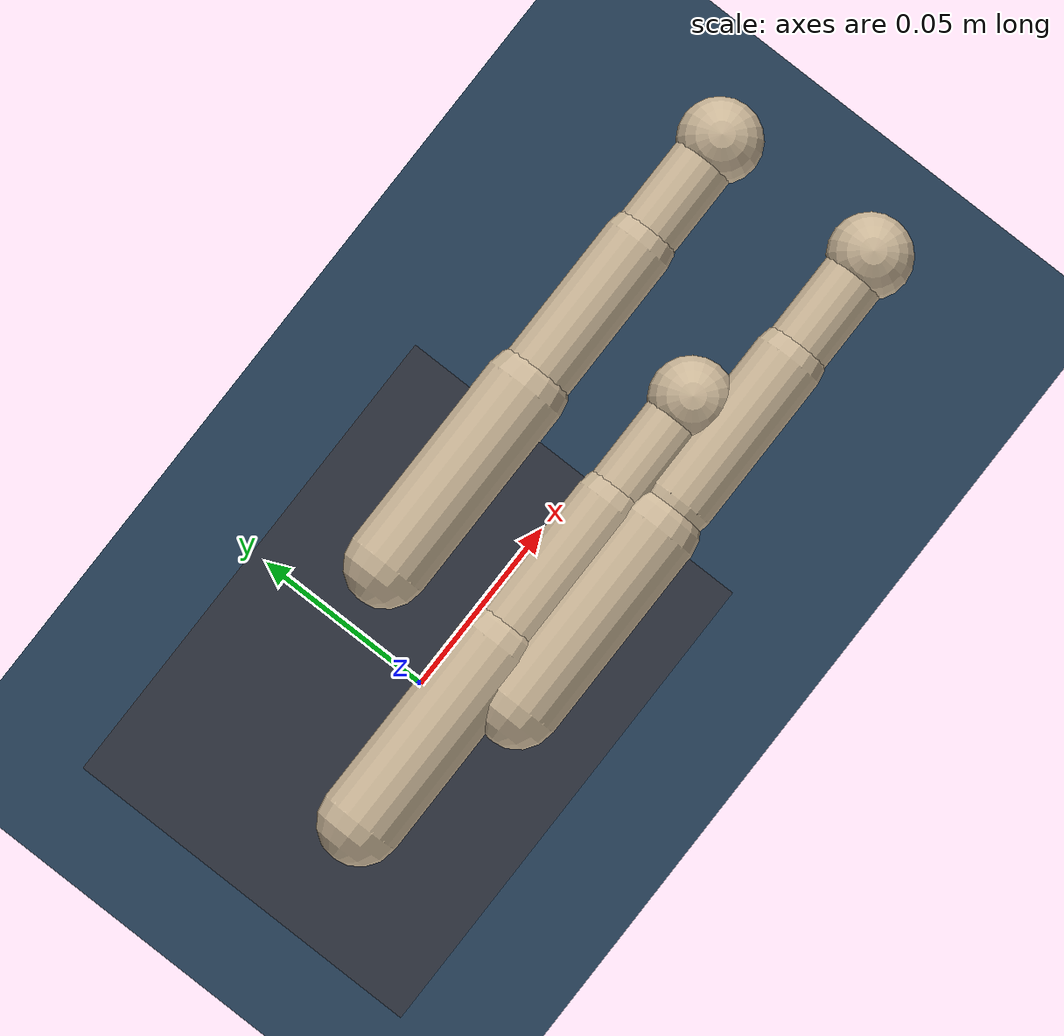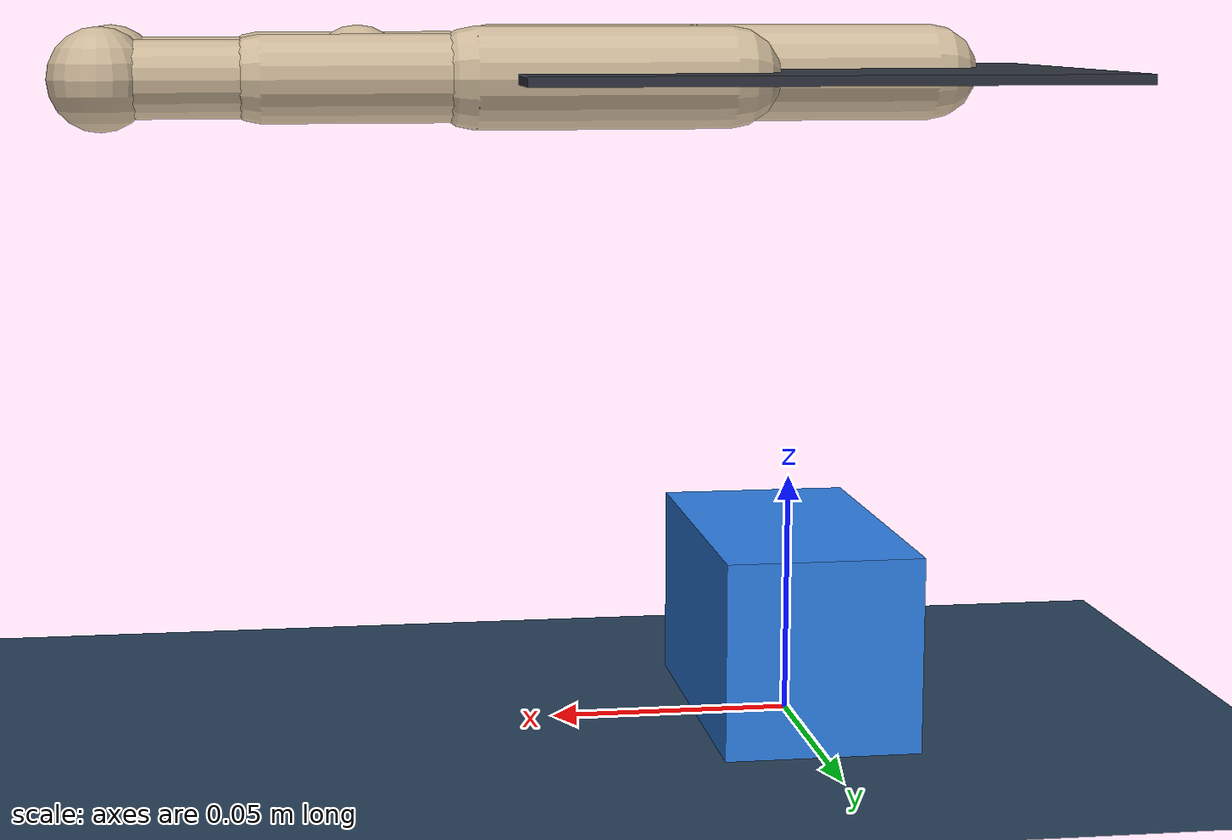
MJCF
<mujoco model="scene_prism3_tn0d0015p0d0169p0d0000_ip0d0172n0d0104p0d0011_mp0d0107p0d0072p0d0079">
  <compiler angle="radian" autolimits="true" />
  <option timestep="0.002" gravity="0 0 -9.81" integrator="implicitfast" />
  <visual>
    <headlight ambient=".4 .4 .4" diffuse=".8 .8 .8" specular="0.1 0.1 0.1" />
    <map znear=".01" />
    <quality shadowsize="2048" />
    <global elevation="-15" />
  </visual>
  <default>
    <geom friction="1.0 0.05 0.001" solref="0.01 1" solimp="0.95 0.99 0.001" />
    <motor ctrlrange="-1 1" ctrllimited="true" />
    <default class="pose">
      <joint damping="2.0" armature="0.01" />
      <position kp="4000" kv="100" forcerange="-1000 1000" />
    </default>
    <default class="ctrl">
      <joint damping="0.5" armature="0.001" />
      <position kp="30" kv="0.5" gear="1" forcerange="-10 10" ctrlrange="-1 1" />
    </default>
  </default>
  <asset>
    <texture type="skybox" builtin="gradient" rgb1="0.3 0.5 0.7" rgb2="0 0 0" width="512" height="3072" />
    <texture type="2d" name="groundplane" builtin="checker" mark="edge" rgb1="0.2 0.3 0.4" rgb2="0.1 0.2 0.3" markrgb="0.8 0.8 0.8" width="300" height="300" />
    <material name="groundplane" texture="groundplane" texuniform="true" texrepeat="5 5" reflectance="0.2" />
    <texture name="grid" type="2d" builtin="checker" rgb1="0.15 0.15 0.15" rgb2="0.25 0.25 0.25" width="256" height="256" />
    <material name="table_mat" texture="grid" texrepeat="3 3" reflectance="0.2" />
    <material name="palm_mat" rgba="0.18 0.2 0.24 1" />
    <material name="finger_mat" rgba="0.8 0.72 0.6 1" />
    <material name="object_mat" rgba="0.18 0.5 0.9 1" />
  </asset>
  <worldbody>
    <light pos="0 0 1.5" dir="0 0 -1" directional="true" diffuse=".6 .6 .6" specular=".2 .2 .2" />
    <light pos="0.5 0.5 1.0" dir="-1 -1 -1" directional="true" diffuse=".4 .4 .4" specular=".1 .1 .1" />
    <geom name="floor" type="plane" size="1.5 1.5 0.1" material="groundplane" />
    <body name="cube" pos="0.000000 0.000000 0.020000">
      <freejoint />
      <geom type="box" size="0.020000 0.035000 0.020000" density="500" material="object_mat" />
    </body>
    <body gravcomp="1" name="palm_pose" pos="0 0 0.134">
      <joint class="pose" name="palm_px" type="slide" axis="1 0 0" range="-0.20 0.20" />
      <joint class="pose" name="palm_py" type="slide" axis="0 1 0" range="-0.20 0.20" />
      <joint class="pose" name="palm_pz" type="slide" axis="0 0 1" range="-0.15 0.35" />
      <joint class="pose" name="palm_rx" type="hinge" axis="1 0 0" range="-1.57 1.57" />
      <joint class="pose" name="palm_ry" type="hinge" axis="0 1 0" range="-1.57 1.57" />
      <joint class="pose" name="palm_rz" type="hinge" axis="0 0 1" range="-3.14 3.14" />
      <geom type="box" size="0.06 0.045 0.001" material="palm_mat" />
      <body name="thumb_mount" pos="-0.031526 -0.011135 0">
        <inertial pos="0 0 0" mass="0.001" diaginertia="1e-6 1e-6 1e-6" />
        <body name="thumb_yaw_frame">
          <inertial pos="0 0 0" mass="0.001" diaginertia="1e-6 1e-6 1e-6" />
          <joint class="ctrl" name="thumb_yaw" type="hinge" axis="1 0 0" range="-1.1 1.1" />
          <body name="thumb_mcp_frame">
            <joint class="ctrl" name="thumb_mcp" type="hinge" axis="0 1 0" range="0 3.14" />
            <geom type="capsule" fromto="0 0 0 0.05 0 0" size="0.010" material="finger_mat" />
            <body name="thumb_len_frame" pos="0.05 0 0">
              <geom type="capsule" fromto="0 0 0 0.04 0 0" size="0.0085" material="finger_mat" />
              <body name="thumb_pip_frame" pos="0.04 0 0">
                <joint class="ctrl" name="thumb_pip" type="hinge" axis="0 1 0" range="-1.2 0.5" />
                <geom type="capsule" fromto="0 0 0 0.03 0 0" size="0.0075" material="finger_mat" />
                <body name="thumb_tip" pos="0.03 0 0">
                  <geom type="sphere" size="0.010" material="finger_mat" />
                </body>
              </body>
            </body>
          </body>
        </body>
      </body>
      <body name="index_mount" pos="0.017236 0.019623 0">
        <inertial pos="0 0 0" mass="0.001" diaginertia="1e-6 1e-6 1e-6" />
        <body name="index_yaw_frame">
          <inertial pos="0 0 0" mass="0.001" diaginertia="1e-6 1e-6 1e-6" />
          <joint class="ctrl" name="index_yaw" type="hinge" axis="1 0 0" range="-1.1 1.1" />
          <body name="index_mcp_frame">
            <joint class="ctrl" name="index_mcp" type="hinge" axis="0 1 0" range="0 2.5" />
            <geom type="capsule" fromto="0 0 0 0.05 0 0" size="0.010" material="finger_mat" />
            <body name="index_len_frame" pos="0.05109 0 0">
              <geom type="capsule" fromto="0 0 0 0.04 0 0" size="0.0085" material="finger_mat" />
              <body name="index_pip_frame" pos="0.04 0 0">
                <joint class="ctrl" name="index_pip" type="hinge" axis="0 1 0" range="-1.2 1.57" />
                <geom type="capsule" fromto="0 0 0 0.03 0 0" size="0.0075" material="finger_mat" />
                <body name="index_tip" pos="0.03 0 0">
                  <geom type="sphere" size="0.010" material="finger_mat" />
                </body>
              </body>
            </body>
          </body>
        </body>
      </body>
      <body name="middle_mount" pos="0.010693 -0.02283 0">
        <inertial pos="0 0 0" mass="0.001" diaginertia="1e-6 1e-6 1e-6" />
        <body name="middle_yaw_frame">
          <inertial pos="0 0 0" mass="0.001" diaginertia="1e-6 1e-6 1e-6" />
          <joint class="ctrl" name="middle_yaw" type="hinge" axis="1 0 0" range="-1.1 1.1" />
          <body name="middle_mcp_frame">
            <joint class="ctrl" name="middle_mcp" type="hinge" axis="0 1 0" range="0 2.5" />
            <geom type="capsule" fromto="0 0 0 0.05 0 0" size="0.010" material="finger_mat" />
            <body name="middle_len_frame" pos="0.057891 0 0">
              <geom type="capsule" fromto="0 0 0 0.04 0 0" size="0.0085" material="finger_mat" />
              <body name="middle_pip_frame" pos="0.04 0 0">
                <joint class="ctrl" name="middle_pip" type="hinge" axis="0 1 0" range="-1.2 1.57" />
                <geom type="capsule" fromto="0 0 0 0.03 0 0" size="0.0075" material="finger_mat" />
                <body name="middle_tip" pos="0.03 0 0">
                  <geom type="sphere" size="0.010" material="finger_mat" />
                </body>
              </body>
            </body>
          </body>
        </body>
      </body>
    </body>
  </worldbody>
  <actuator>
    <position class="pose" name="a_palm_px" joint="palm_px" ctrlrange="-0.20 0.20" />
    <position class="pose" name="a_palm_py" joint="palm_py" ctrlrange="-0.20 0.20" />
    <position class="pose" name="a_palm_pz" joint="palm_pz" ctrlrange="-0.15 0.35" />
    <position class="pose" name="a_palm_rx" joint="palm_rx" ctrlrange="-1.57 1.57" />
    <position class="pose" name="a_palm_ry" joint="palm_ry" ctrlrange="-1.57 1.57" />
    <position class="pose" name="a_palm_rz" joint="palm_rz" ctrlrange="-3.14 3.14" />
    <position class="ctrl" name="a_thumb_yaw" joint="thumb_yaw" ctrlrange="-1.1 1.1" />
    <position class="ctrl" name="a_thumb_mcp" joint="thumb_mcp" ctrlrange="0 3.14" />
    <position class="ctrl" name="a_thumb_pip" joint="thumb_pip" ctrlrange="-1.2 0.5" />
    <position class="ctrl" name="a_index_yaw" joint="index_yaw" ctrlrange="-1.1 1.1" />
    <position class="ctrl" name="a_index_mcp" joint="index_mcp" ctrlrange="0 2.5" />
    <position class="ctrl" name="a_index_pip" joint="index_pip" ctrlrange="-1.2 1.57" />
    <position class="ctrl" name="a_middle_yaw" joint="middle_yaw" ctrlrange="-1.1 1.1" />
    <position class="ctrl" name="a_middle_mcp" joint="middle_mcp" ctrlrange="0 2.5" />
    <position class="ctrl" name="a_middle_pip" joint="middle_pip" ctrlrange="-1.2 1.57" />
  </actuator>
  <keyframe>
    <key name="open" qpos="&#10;        0 0 0.02 1 0 0 0 0.02 0 0 0 0 0 0 2 -0.707 0 1.25 1 0 1.25 1&#10;      " ctrl="&#10;        0.02 0 0 0 0 0 0 2 -0.707 0 1.25 1 0 1.25 1&#10;      " />
    <key name="foundational" qpos="&#10;        0.006579333435 -0.01971152338 0.02526377169 0.7294007587 -0.06197533159 0.02342512604 -0.6808706595 0.01999999879 -8.912229149e-08 -0.000466870771 4.465528418e-06 -4.272419992e-06 7.624499361e-09 0.1844544846 1.837873954 -1.127908404 0.05733691548 1.400489933 1.088195823 -0.2632244354 1.724591654 1.155821256&#10;      " ctrl="&#10;        0.02 0 0 0 0 0 0.08598723047 1.832669654 -1.133897164 0.05738064988 1.400496103 1.088270084 -0.1654136965 1.739440077 1.161956443&#10;      " />
  </keyframe>
</mujoco>
